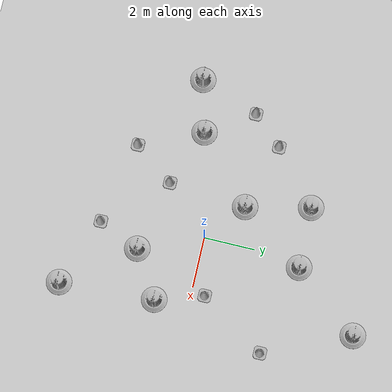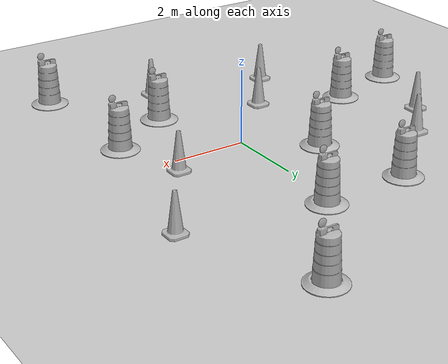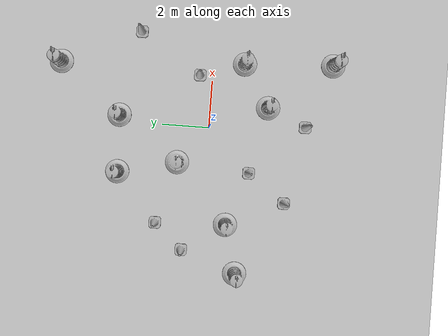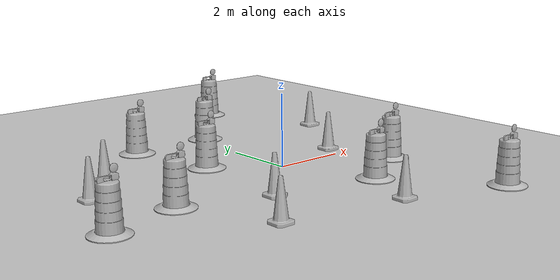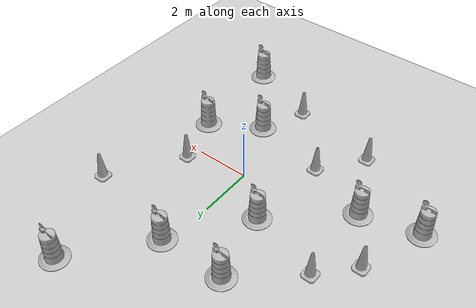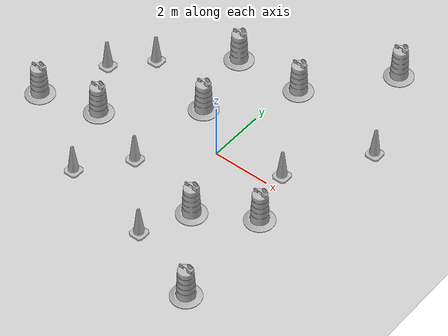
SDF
<sdf version="1.7">
 <world name="default">
  <light name="sun" type="directional">
   <pose>0 0 10 0 -0 0</pose>
   <diffuse>0.8 0.8 0.8 1</diffuse>
   <specular>0.2 0.2 0.2 1</specular>
   <attenuation>
    <range>1000</range>
    <constant>0.9</constant>
    <linear>0.01</linear>
    <quadratic>0.001</quadratic>
   </attenuation>
   <direction>-0.5 0.1 -0.9</direction>
   <spot><inner_angle>0</inner_angle><outer_angle>0</outer_angle><falloff>0</falloff></spot>
  </light>
  <model name="ground_plane">
   <static>1</static>
   <link name="link">
    <collision name="collision">
     <geometry><plane><normal>0 0 1</normal><size>100 100</size></plane></geometry>
     <surface><friction><ode><mu>100</mu><mu2>50</mu2></ode></friction></surface>
    </collision>
    <visual name="visual">
     <cast_shadows>0</cast_shadows>
     <geometry><plane><normal>0 0 1</normal><size>100 100</size></plane></geometry>
     <material>
      <script><uri>file://media/materials/scripts/gazebo.material</uri><name>Gazebo/Grey</name></script>
     </material>
    </visual>
   </link>
  </model>
  <gravity>0 0 -9.8</gravity>
  <magnetic_field>6e-06 2.3e-05 -4.2e-05</magnetic_field>
  <atmosphere type="adiabatic"/>
  <physics type="ode">
   <max_step_size>0.001</max_step_size>
   <real_time_factor>1</real_time_factor>
   <real_time_update_rate>1000</real_time_update_rate>
  </physics>
  <scene><ambient>0.4 0.4 0.4 1</ambient><background>0.7 0.7 0.7 1</background><shadows>1</shadows></scene>
  <audio><device>default</device></audio>
  <spherical_coordinates>
   <surface_model>EARTH_WGS84</surface_model>
   <latitude_deg>0</latitude_deg>
   <longitude_deg>0</longitude_deg>
   <elevation>0</elevation>
   <heading_deg>0</heading_deg>
  </spherical_coordinates>
  <model name="Construction Cone">
   <link name="link">
    <collision name="collision">
     <geometry>
      <mesh><scale>10 10 10</scale><uri>model://construction_cone/meshes/construction_cone.dae</uri></mesh>
     </geometry>
    </collision>
    <visual name="visual">
     <geometry>
      <mesh><scale>10 10 10</scale><uri>model://construction_cone/meshes/construction_cone.dae</uri></mesh>
     </geometry>
    </visual>
    <inertial>
     <inertia><ixx>1</ixx><ixy>0</ixy><ixz>0</ixz><iyy>1</iyy><iyz>0</iyz><izz>1</izz></inertia>
     <mass>1</mass>
    </inertial>
   </link>
   <pose>-1.82526 -1.8214 -1e-06 2e-06 2e-06 0</pose>
  </model>
  <model name="Construction Cone_0">
   <link name="link">
    <collision name="collision">
     <geometry>
      <mesh><scale>10 10 10</scale><uri>model://construction_cone/meshes/construction_cone.dae</uri></mesh>
     </geometry>
    </collision>
    <visual name="visual">
     <geometry>
      <mesh><scale>10 10 10</scale><uri>model://construction_cone/meshes/construction_cone.dae</uri></mesh>
     </geometry>
    </visual>
    <inertial>
     <inertia><ixx>1</ixx><ixy>0</ixy><ixz>0</ixz><iyy>1</iyy><iyz>0</iyz><izz>1</izz></inertia>
     <mass>1</mass>
    </inertial>
   </link>
   <pose>-4.19111 2.03049 -0 0 -1e-06 0</pose>
  </model>
  <model name="Construction Cone_1">
   <link name="link">
    <collision name="collision">
     <geometry>
      <mesh><scale>10 10 10</scale><uri>model://construction_cone/meshes/construction_cone.dae</uri></mesh>
     </geometry>
    </collision>
    <visual name="visual">
     <geometry>
      <mesh><scale>10 10 10</scale><uri>model://construction_cone/meshes/construction_cone.dae</uri></mesh>
     </geometry>
    </visual>
    <inertial>
     <inertia><ixx>1</ixx><ixy>0</ixy><ixz>0</ixz><iyy>1</iyy><iyz>0</iyz><izz>1</izz></inertia>
     <mass>1</mass>
    </inertial>
   </link>
   <pose>0.28628 -4.09921 -0 0 -0 0</pose>
  </model>
  <model name="Construction Cone_2">
   <link name="link">
    <collision name="collision">
     <geometry>
      <mesh><scale>10 10 10</scale><uri>model://construction_cone/meshes/construction_cone.dae</uri></mesh>
     </geometry>
    </collision>
    <visual name="visual">
     <geometry>
      <mesh><scale>10 10 10</scale><uri>model://construction_cone/meshes/construction_cone.dae</uri></mesh>
     </geometry>
    </visual>
    <inertial>
     <inertia><ixx>1</ixx><ixy>0</ixy><ixz>0</ixz><iyy>1</iyy><iyz>0</iyz><izz>1</izz></inertia>
     <mass>1</mass>
    </inertial>
   </link>
   <pose>3.89772 3.11938 -0 0 -1e-06 0</pose>
  </model>
  <model name="Construction Barrel">
   <link name="link">
    <inertial>
     <pose>0 0 0.4 0 -0 0</pose>
     <mass>500</mass>
     <inertia><ixx>51.2096</ixx><iyy>51.2096</iyy><izz>25</izz><ixy>0</ixy><ixz>0</ixz><iyz>0</iyz></inertia>
    </inertial>
    <collision name="collision">
     <geometry><mesh><uri>model://construction_barrel/meshes/construction_barrel.dae</uri></mesh></geometry>
    </collision>
    <visual name="visual">
     <geometry><mesh><uri>model://construction_barrel/meshes/construction_barrel.dae</uri></mesh></geometry>
    </visual>
   </link>
   <pose>-6.14896 -1.5053 -1e-06 1e-06 -9e-06 -2.1e-05</pose>
  </model>
  <model name="Construction Barrel_0">
   <link name="link">
    <inertial>
     <pose>0 0 0.4 0 -0 0</pose>
     <mass>500</mass>
     <inertia><ixx>51.2096</ixx><iyy>51.2096</iyy><izz>25</izz><ixy>0</ixy><ixz>0</ixz><iyz>0</iyz></inertia>
    </inertial>
    <collision name="collision">
     <geometry><mesh><uri>model://construction_barrel/meshes/construction_barrel.dae</uri></mesh></geometry>
    </collision>
    <visual name="visual">
     <geometry><mesh><uri>model://construction_barrel/meshes/construction_barrel.dae</uri></mesh></geometry>
    </visual>
   </link>
   <pose>-1.56196 1.26216 -1e-06 1e-06 -9e-06 -2e-05</pose>
  </model>
  <model name="Construction Cone_3">
   <link name="link">
    <collision name="collision">
     <geometry>
      <mesh><scale>10 10 10</scale><uri>model://construction_cone/meshes/construction_cone.dae</uri></mesh>
     </geometry>
    </collision>
    <visual name="visual">
     <geometry>
      <mesh><scale>10 10 10</scale><uri>model://construction_cone/meshes/construction_cone.dae</uri></mesh>
     </geometry>
    </visual>
    <inertial>
     <inertia><ixx>1</ixx><ixy>0</ixy><ixz>0</ixz><iyy>1</iyy><iyz>0</iyz><izz>1</izz></inertia>
     <mass>1</mass>
    </inertial>
   </link>
   <pose>-3.01051 -3.40156 -1e-05 -0 -0 -0</pose>
  </model>
  <model name="Construction Barrel_1">
   <link name="link">
    <inertial>
     <pose>0 0 0.4 0 -0 0</pose>
     <mass>500</mass>
     <inertia><ixx>51.2096</ixx><iyy>51.2096</iyy><izz>25</izz><ixy>0</ixy><ixz>0</ixz><iyz>0</iyz></inertia>
    </inertial>
    <collision name="collision">
     <geometry><mesh><uri>model://construction_barrel/meshes/construction_barrel.dae</uri></mesh></geometry>
    </collision>
    <visual name="visual">
     <geometry><mesh><uri>model://construction_barrel/meshes/construction_barrel.dae</uri></mesh></geometry>
    </visual>
   </link>
   <pose>1.00952 -2.46275 -5e-06 -9e-06 -9e-06 -1.8e-05</pose>
  </model>
  <model name="Construction Cone_4">
   <link name="link">
    <collision name="collision">
     <geometry>
      <mesh><scale>10 10 10</scale><uri>model://construction_cone/meshes/construction_cone.dae</uri></mesh>
     </geometry>
    </collision>
    <visual name="visual">
     <geometry>
      <mesh><scale>10 10 10</scale><uri>model://construction_cone/meshes/construction_cone.dae</uri></mesh>
     </geometry>
    </visual>
    <inertial>
     <inertia><ixx>1</ixx><ixy>0</ixy><ixz>0</ixz><iyy>1</iyy><iyz>0</iyz><izz>1</izz></inertia>
     <mass>1</mass>
    </inertial>
   </link>
   <pose>2.21361 0.527694 -0 0 -0 0</pose>
  </model>
  <model name="Construction Barrel_2">
   <link name="link">
    <inertial>
     <pose>0 0 0.4 0 -0 0</pose>
     <mass>500</mass>
     <inertia><ixx>51.2096</ixx><iyy>51.2096</iyy><izz>25</izz><ixy>0</ixy><ixz>0</ixz><iyz>0</iyz></inertia>
    </inertial>
    <collision name="collision">
     <geometry><mesh><uri>model://construction_barrel/meshes/construction_barrel.dae</uri></mesh></geometry>
    </collision>
    <visual name="visual">
     <geometry><mesh><uri>model://construction_barrel/meshes/construction_barrel.dae</uri></mesh></geometry>
    </visual>
   </link>
   <pose>0.291556 3.85442 -3e-06 -7e-06 -1.2e-05 -1.5e-05</pose>
  </model>
  <model name="Construction Cone_5">
   <link name="link">
    <collision name="collision">
     <geometry>
      <mesh><scale>10 10 10</scale><uri>model://construction_cone/meshes/construction_cone.dae</uri></mesh>
     </geometry>
    </collision>
    <visual name="visual">
     <geometry>
      <mesh><scale>10 10 10</scale><uri>model://construction_cone/meshes/construction_cone.dae</uri></mesh>
     </geometry>
    </visual>
    <inertial>
     <inertia><ixx>1</ixx><ixy>0</ixy><ixz>0</ixz><iyy>1</iyy><iyz>0</iyz><izz>1</izz></inertia>
     <mass>1</mass>
    </inertial>
   </link>
   <pose>-5.27619 0.844807 -0 0 -0 0</pose>
  </model>
  <model name="Construction Barrel_3">
   <link name="link">
    <inertial>
     <pose>0 0 0.4 0 -0 0</pose>
     <mass>500</mass>
     <inertia><ixx>51.2096</ixx><iyy>51.2096</iyy><izz>25</izz><ixy>0</ixy><ixz>0</ixz><iyz>0</iyz></inertia>
    </inertial>
    <collision name="collision">
     <geometry><mesh><uri>model://construction_barrel/meshes/construction_barrel.dae</uri></mesh></geometry>
    </collision>
    <visual name="visual">
     <geometry><mesh><uri>model://construction_barrel/meshes/construction_barrel.dae</uri></mesh></geometry>
    </visual>
   </link>
   <pose>-2.12502 3.78638 -2e-06 0 7e-06 -1e-05</pose>
  </model>
  <model name="Construction Barrel_4">
   <link name="link">
    <inertial>
     <pose>0 0 0.4 0 -0 0</pose>
     <mass>500</mass>
     <inertia><ixx>51.2096</ixx><iyy>51.2096</iyy><izz>25</izz><ixy>0</ixy><ixz>0</ixz><iyz>0</iyz></inertia>
    </inertial>
    <collision name="collision">
     <geometry><mesh><uri>model://construction_barrel/meshes/construction_barrel.dae</uri></mesh></geometry>
    </collision>
    <visual name="visual">
     <geometry><mesh><uri>model://construction_barrel/meshes/construction_barrel.dae</uri></mesh></geometry>
    </visual>
   </link>
   <pose>2.8065 -1.35254 -2e-06 -5e-06 -4e-06 -9e-06</pose>
  </model>
  <model name="Construction Barrel_5">
   <link name="link">
    <inertial>
     <pose>0 0 0.4 0 -0 0</pose>
     <mass>500</mass>
     <inertia><ixx>51.2096</ixx><iyy>51.2096</iyy><izz>25</izz><ixy>0</ixy><ixz>0</ixz><iyz>0</iyz></inertia>
    </inertial>
    <collision name="collision">
     <geometry><mesh><uri>model://construction_barrel/meshes/construction_barrel.dae</uri></mesh></geometry>
    </collision>
    <visual name="visual">
     <geometry><mesh><uri>model://construction_barrel/meshes/construction_barrel.dae</uri></mesh></geometry>
    </visual>
   </link>
   <pose>2.41384 6.47586 1e-06 1e-06 1e-06 -8e-06</pose>
  </model>
  <model name="Construction Barrel_6">
   <link name="link">
    <inertial>
     <pose>0 0 0.4 0 -0 0</pose>
     <mass>500</mass>
     <inertia><ixx>51.2096</ixx><iyy>51.2096</iyy><izz>25</izz><ixy>0</ixy><ixz>0</ixz><iyz>0</iyz></inertia>
    </inertial>
    <collision name="collision">
     <geometry><mesh><uri>model://construction_barrel/meshes/construction_barrel.dae</uri></mesh></geometry>
    </collision>
    <visual name="visual">
     <geometry><mesh><uri>model://construction_barrel/meshes/construction_barrel.dae</uri></mesh></geometry>
    </visual>
   </link>
   <pose>-4.09331 -0.969143 -2e-06 -7e-06 -4e-06 -7e-06</pose>
  </model>
  <model name="Construction Barrel_7">
   <link name="link">
    <inertial>
     <pose>0 0 0.4 0 -0 0</pose>
     <mass>500</mass>
     <inertia><ixx>51.2096</ixx><iyy>51.2096</iyy><izz>25</izz><ixy>0</ixy><ixz>0</ixz><iyz>0</iyz></inertia>
    </inertial>
    <collision name="collision">
     <geometry><mesh><uri>model://construction_barrel/meshes/construction_barrel.dae</uri></mesh></geometry>
    </collision>
    <visual name="visual">
     <geometry><mesh><uri>model://construction_barrel/meshes/construction_barrel.dae</uri></mesh></geometry>
    </visual>
   </link>
   <pose>2.9892 -5.11581 -1e-06 2e-06 -1e-06 -4e-06</pose>
  </model>
 </world>
</sdf>
